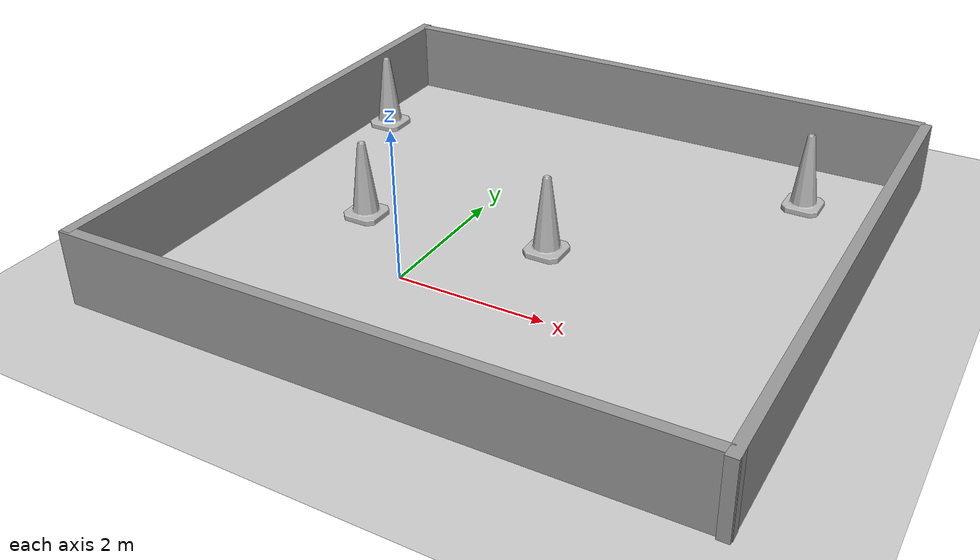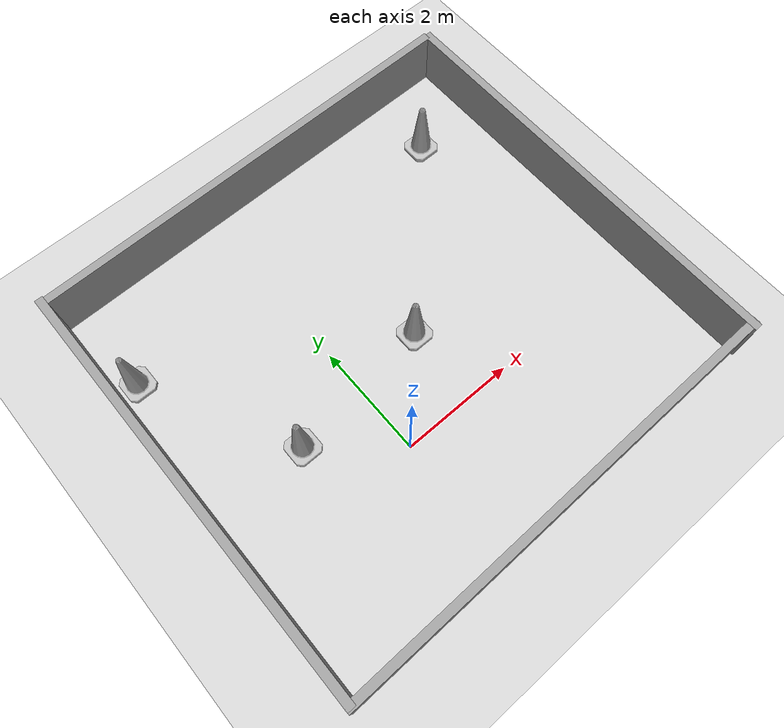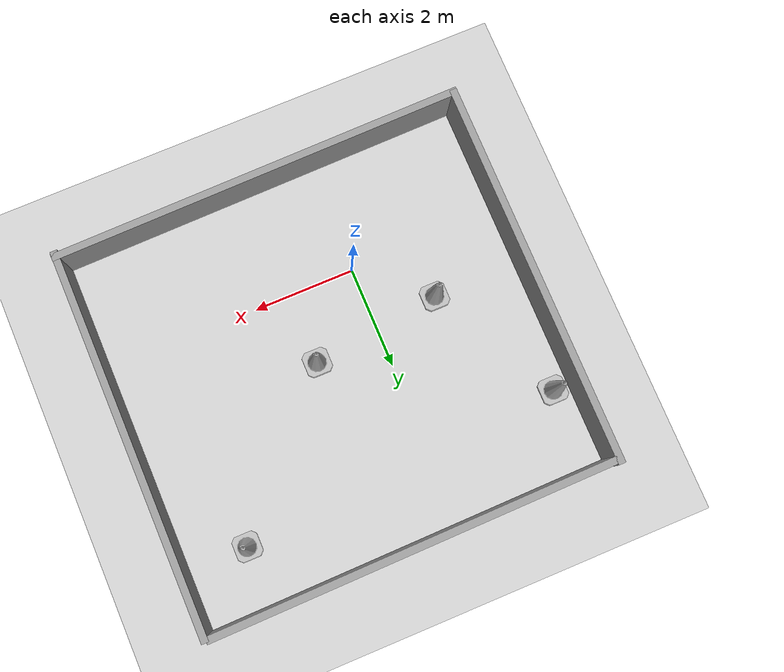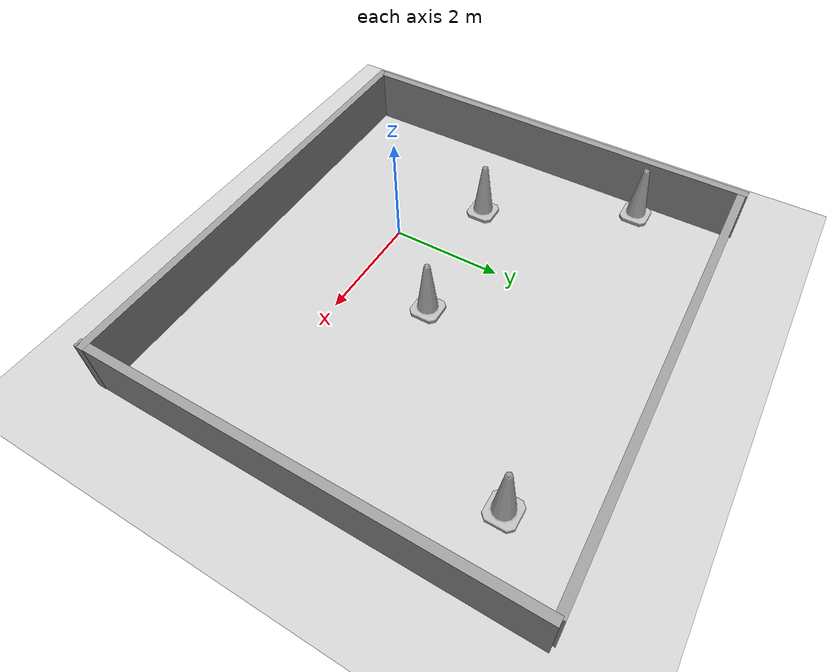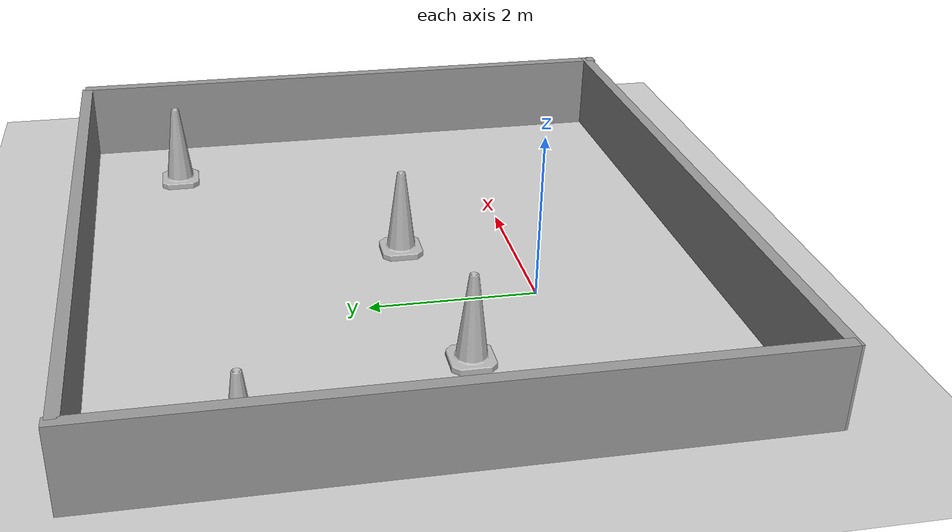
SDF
<sdf version="1.7">
 <world name="default">
  <light name="sun" type="directional">
   <pose>0 0 10 0 -0 0</pose>
   <diffuse>0.8 0.8 0.8 1</diffuse>
   <specular>0.2 0.2 0.2 1</specular>
   <attenuation>
    <range>1000</range>
    <constant>0.9</constant>
    <linear>0.01</linear>
    <quadratic>0.001</quadratic>
   </attenuation>
   <direction>-0.5 0.1 -0.9</direction>
   <spot><inner_angle>0</inner_angle><outer_angle>0</outer_angle><falloff>0</falloff></spot>
  </light>
  <model name="ground_plane">
   <static>1</static>
   <link name="link">
    <collision name="collision">
     <geometry><plane><normal>0 0 1</normal><size>100 100</size></plane></geometry>
     <surface>
      <contact><collide_bitmask>65535</collide_bitmask></contact>
      <friction><ode><mu>100</mu><mu2>50</mu2></ode></friction>
     </surface>
    </collision>
    <visual name="visual">
     <cast_shadows>0</cast_shadows>
     <geometry><plane><normal>0 0 1</normal><size>100 100</size></plane></geometry>
     <material>
      <script><uri>file://media/materials/scripts/gazebo.material</uri><name>Gazebo/Grey</name></script>
     </material>
    </visual>
   </link>
  </model>
  <gravity>0 0 -9.8</gravity>
  <magnetic_field>6e-06 2.3e-05 -4.2e-05</magnetic_field>
  <atmosphere type="adiabatic"/>
  <physics type="ode">
   <max_step_size>0.001</max_step_size>
   <real_time_factor>1</real_time_factor>
   <real_time_update_rate>1000</real_time_update_rate>
  </physics>
  <scene><ambient>0.4 0.4 0.4 1</ambient><background>0.7 0.7 0.7 1</background><shadows>1</shadows></scene>
  <spherical_coordinates>
   <surface_model>EARTH_WGS84</surface_model>
   <latitude_deg>0</latitude_deg>
   <longitude_deg>0</longitude_deg>
   <elevation>0</elevation>
   <heading_deg>0</heading_deg>
  </spherical_coordinates>
  <model name="Construction Cone">
   <link name="link">
    <collision name="collision">
     <geometry>
      <mesh><scale>10 10 10</scale><uri>model://construction_cone/meshes/construction_cone.dae</uri></mesh>
     </geometry>
    </collision>
    <visual name="visual">
     <geometry>
      <mesh><scale>10 10 10</scale><uri>model://construction_cone/meshes/construction_cone.dae</uri></mesh>
     </geometry>
    </visual>
    <inertial>
     <inertia><ixx>1</ixx><ixy>0</ixy><ixz>0</ixz><iyy>1</iyy><iyz>0</iyz><izz>1</izz></inertia>
     <mass>1</mass>
    </inertial>
   </link>
   <pose>1.30354 1.39532 -0 -0 -0 -0</pose>
  </model>
  <model name="Construction Cone_0">
   <link name="link">
    <collision name="collision">
     <geometry>
      <mesh><scale>10 10 10</scale><uri>model://construction_cone/meshes/construction_cone.dae</uri></mesh>
     </geometry>
    </collision>
    <visual name="visual">
     <geometry>
      <mesh><scale>10 10 10</scale><uri>model://construction_cone/meshes/construction_cone.dae</uri></mesh>
     </geometry>
    </visual>
    <inertial>
     <inertia><ixx>1</ixx><ixy>0</ixy><ixz>0</ixz><iyy>1</iyy><iyz>0</iyz><izz>1</izz></inertia>
     <mass>1</mass>
    </inertial>
   </link>
   <pose>3.82306 4.09421 -0 0 -0 0</pose>
  </model>
  <model name="Construction Cone_1">
   <link name="link">
    <collision name="collision">
     <geometry>
      <mesh><scale>10 10 10</scale><uri>model://construction_cone/meshes/construction_cone.dae</uri></mesh>
     </geometry>
    </collision>
    <visual name="visual">
     <geometry>
      <mesh><scale>10 10 10</scale><uri>model://construction_cone/meshes/construction_cone.dae</uri></mesh>
     </geometry>
    </visual>
    <inertial>
     <inertia><ixx>1</ixx><ixy>0</ixy><ixz>0</ixz><iyy>1</iyy><iyz>0</iyz><izz>1</izz></inertia>
     <mass>1</mass>
    </inertial>
   </link>
   <pose>-1.26913 1.07424 -0 0 -0 0</pose>
  </model>
  <model name="Construction Cone_2">
   <link name="link">
    <collision name="collision">
     <geometry>
      <mesh><scale>10 10 10</scale><uri>model://construction_cone/meshes/construction_cone.dae</uri></mesh>
     </geometry>
    </collision>
    <visual name="visual">
     <geometry>
      <mesh><scale>10 10 10</scale><uri>model://construction_cone/meshes/construction_cone.dae</uri></mesh>
     </geometry>
    </visual>
    <inertial>
     <inertia><ixx>1</ixx><ixy>0</ixy><ixz>0</ixz><iyy>1</iyy><iyz>0</iyz><izz>1</izz></inertia>
     <mass>1</mass>
    </inertial>
   </link>
   <pose>-2.62685 3.60364 -0 0 -1e-06 0</pose>
  </model>
  <model name="wall_obstacle">
   <link name="link_0">
    <inertial>
     <mass>1.09319</mass>
     <inertia>
      <ixx>5.37958</ixx>
      <ixy>0</ixy>
      <ixz>0</ixz>
      <iyy>0.0929759</iyy>
      <iyz>0</iyz>
      <izz>5.29036</izz>
     </inertia>
    </inertial>
    <pose>-4.02934 -0.021011 0 0 -0 0</pose>
    <visual name="visual">
     <geometry><box><size>0.14354 7.61919 1</size></box></geometry>
     <material>
      <lighting>1</lighting>
      <script><uri>file://media/materials/scripts/gazebo.material</uri><name>Gazebo/Grey</name></script>
      <shader type="pixel"/>
      <emissive>0 0 0 1</emissive>
     </material>
    </visual>
    <collision name="collision">
     <geometry><box><size>0.14354 7.61919 1</size></box></geometry>
     <surface>
      <friction>
       <ode><mu>1</mu><mu2>1</mu2><fdir1>0 0 0</fdir1><slip1>0</slip1><slip2>0</slip2></ode>
       <torsional>
        <coefficient>1</coefficient>
        <patch_radius>0</patch_radius>
        <surface_radius>0</surface_radius>
        <use_patch_radius>1</use_patch_radius>
        <ode><slip>0</slip></ode>
       </torsional>
      </friction>
      <bounce><restitution_coefficient>0</restitution_coefficient><threshold>1e+06</threshold></bounce>
      <contact>
       <collide_without_contact>0</collide_without_contact>
       <collide_without_contact_bitmask>1</collide_without_contact_bitmask>
       <collide_bitmask>1</collide_bitmask>
       <ode>
        <soft_cfm>0</soft_cfm>
        <soft_erp>0.2</soft_erp>
        <kp>1e+13</kp>
        <kd>1</kd>
        <max_vel>0.01</max_vel>
        <min_depth>0</min_depth>
       </ode>
       <bullet>
        <split_impulse>1</split_impulse>
        <split_impulse_penetration_threshold>-0.01</split_impulse_penetration_threshold>
        <soft_cfm>0</soft_cfm>
        <soft_erp>0.2</soft_erp>
        <kp>1e+13</kp>
        <kd>1</kd>
       </bullet>
      </contact>
     </surface>
    </collision>
   </link>
   <link name="link_0_clone">
    <inertial>
     <mass>1.09319</mass>
     <inertia>
      <ixx>5.37958</ixx>
      <ixy>0</ixy>
      <ixz>0</ixz>
      <iyy>0.0929759</iyy>
      <iyz>0</iyz>
      <izz>5.29036</izz>
     </inertia>
    </inertial>
    <pose>4.02627 0.015635 0 0 -0 0</pose>
    <visual name="visual">
     <geometry><box><size>0.14354 7.61919 1</size></box></geometry>
     <material>
      <lighting>1</lighting>
      <script><uri>file://media/materials/scripts/gazebo.material</uri><name>Gazebo/Grey</name></script>
      <shader type="pixel"/>
      <emissive>0 0 0 1</emissive>
     </material>
    </visual>
    <collision name="collision">
     <geometry><box><size>0.14354 7.61919 1</size></box></geometry>
     <surface>
      <friction>
       <ode><mu>1</mu><mu2>1</mu2><fdir1>0 0 0</fdir1><slip1>0</slip1><slip2>0</slip2></ode>
       <torsional>
        <coefficient>1</coefficient>
        <patch_radius>0</patch_radius>
        <surface_radius>0</surface_radius>
        <use_patch_radius>1</use_patch_radius>
        <ode><slip>0</slip></ode>
       </torsional>
      </friction>
      <bounce><restitution_coefficient>0</restitution_coefficient><threshold>1e+06</threshold></bounce>
      <contact>
       <collide_without_contact>0</collide_without_contact>
       <collide_without_contact_bitmask>1</collide_without_contact_bitmask>
       <collide_bitmask>1</collide_bitmask>
       <ode>
        <soft_cfm>0</soft_cfm>
        <soft_erp>0.2</soft_erp>
        <kp>1e+13</kp>
        <kd>1</kd>
        <max_vel>0.01</max_vel>
        <min_depth>0</min_depth>
       </ode>
       <bullet>
        <split_impulse>1</split_impulse>
        <split_impulse_penetration_threshold>-0.01</split_impulse_penetration_threshold>
        <soft_cfm>0</soft_cfm>
        <soft_erp>0.2</soft_erp>
        <kp>1e+13</kp>
        <kd>1</kd>
       </bullet>
      </contact>
     </surface>
    </collision>
   </link>
   <link name="link_0_clone_0">
    <inertial>
     <mass>1.17703</mass>
     <inertia><ixx>6.69913</ixx><ixy>0</ixy><ixz>0</ixz><iyy>0.100107</iyy><iyz>0</iyz><izz>6.60306</izz></inertia>
    </inertial>
    <pose>0.002742 -3.73687 0 0 -0 1.5837</pose>
    <visual name="visual">
     <geometry><box><size>0.14354 8.20356 1</size></box></geometry>
     <material>
      <lighting>1</lighting>
      <script><uri>file://media/materials/scripts/gazebo.material</uri><name>Gazebo/Grey</name></script>
      <shader type="pixel"/>
      <emissive>0 0 0 1</emissive>
     </material>
    </visual>
    <collision name="collision">
     <geometry><box><size>0.14354 8.20356 1</size></box></geometry>
     <surface>
      <friction>
       <ode><mu>1</mu><mu2>1</mu2><fdir1>0 0 0</fdir1><slip1>0</slip1><slip2>0</slip2></ode>
       <torsional>
        <coefficient>1</coefficient>
        <patch_radius>0</patch_radius>
        <surface_radius>0</surface_radius>
        <use_patch_radius>1</use_patch_radius>
        <ode><slip>0</slip></ode>
       </torsional>
      </friction>
      <bounce><restitution_coefficient>0</restitution_coefficient><threshold>1e+06</threshold></bounce>
      <contact>
       <collide_without_contact>0</collide_without_contact>
       <collide_without_contact_bitmask>1</collide_without_contact_bitmask>
       <collide_bitmask>1</collide_bitmask>
       <ode>
        <soft_cfm>0</soft_cfm>
        <soft_erp>0.2</soft_erp>
        <kp>1e+13</kp>
        <kd>1</kd>
        <max_vel>0.01</max_vel>
        <min_depth>0</min_depth>
       </ode>
       <bullet>
        <split_impulse>1</split_impulse>
        <split_impulse_penetration_threshold>-0.01</split_impulse_penetration_threshold>
        <soft_cfm>0</soft_cfm>
        <soft_erp>0.2</soft_erp>
        <kp>1e+13</kp>
        <kd>1</kd>
       </bullet>
      </contact>
     </surface>
    </collision>
   </link>
   <link name="link_0_clone_0_clone">
    <inertial>
     <mass>1.14833</mass>
     <inertia><ixx>6.22552</ixx><ixy>0</ixy><ixz>0</ixz><iyy>0.0976661</iyy><iyz>0</iyz><izz>6.1318</izz></inertia>
    </inertial>
    <pose>0.000327 3.74225 0 0 -0 1.5837</pose>
    <visual name="visual">
     <geometry><box><size>0.14354 8.00352 1</size></box></geometry>
     <material>
      <lighting>1</lighting>
      <script><uri>file://media/materials/scripts/gazebo.material</uri><name>Gazebo/Grey</name></script>
      <shader type="pixel"/>
      <emissive>0 0 0 1</emissive>
     </material>
    </visual>
    <collision name="collision">
     <geometry><box><size>0.14354 8.00352 1</size></box></geometry>
     <surface>
      <friction>
       <ode><mu>1</mu><mu2>1</mu2><fdir1>0 0 0</fdir1><slip1>0</slip1><slip2>0</slip2></ode>
       <torsional>
        <coefficient>1</coefficient>
        <patch_radius>0</patch_radius>
        <surface_radius>0</surface_radius>
        <use_patch_radius>1</use_patch_radius>
        <ode><slip>0</slip></ode>
       </torsional>
      </friction>
      <bounce><restitution_coefficient>0</restitution_coefficient><threshold>1e+06</threshold></bounce>
      <contact>
       <collide_without_contact>0</collide_without_contact>
       <collide_without_contact_bitmask>1</collide_without_contact_bitmask>
       <collide_bitmask>1</collide_bitmask>
       <ode>
        <soft_cfm>0</soft_cfm>
        <soft_erp>0.2</soft_erp>
        <kp>1e+13</kp>
        <kd>1</kd>
        <max_vel>0.01</max_vel>
        <min_depth>0</min_depth>
       </ode>
       <bullet>
        <split_impulse>1</split_impulse>
        <split_impulse_penetration_threshold>-0.01</split_impulse_penetration_threshold>
        <soft_cfm>0</soft_cfm>
        <soft_erp>0.2</soft_erp>
        <kp>1e+13</kp>
        <kd>1</kd>
       </bullet>
      </contact>
     </surface>
    </collision>
   </link>
   <joint name="link_0_JOINT_1" type="fixed">
    <parent>link_0</parent>
    <child>link_0_clone_0_clone</child>
    <physics>
     <ode><limit><cfm>0</cfm><erp>0.2</erp></limit><suspension><cfm>0</cfm><erp>0.2</erp></suspension></ode>
    </physics>
   </joint>
   <joint name="link_0_clone_0_JOINT_0" type="fixed">
    <parent>link_0_clone_0</parent>
    <child>link_0</child>
    <physics>
     <ode><limit><cfm>0</cfm><erp>0.2</erp></limit><suspension><cfm>0</cfm><erp>0.2</erp></suspension></ode>
    </physics>
   </joint>
   <joint name="link_0_clone_0_clone_JOINT_2" type="fixed">
    <parent>link_0_clone_0_clone</parent>
    <child>link_0_clone</child>
    <physics>
     <ode><limit><cfm>0</cfm><erp>0.2</erp></limit><suspension><cfm>0</cfm><erp>0.2</erp></suspension></ode>
    </physics>
   </joint>
   <joint name="link_0_clone_JOINT_3" type="fixed">
    <parent>link_0_clone</parent>
    <child>link_0_clone_0</child>
    <physics>
     <ode><limit><cfm>0</cfm><erp>0.2</erp></limit><suspension><cfm>0</cfm><erp>0.2</erp></suspension></ode>
    </physics>
   </joint>
   <static>0</static>
   <pose>1.02397 1.53373 0.500001 -2e-06 -2e-06 -2e-06</pose>
  </model>
 </world>
</sdf>
